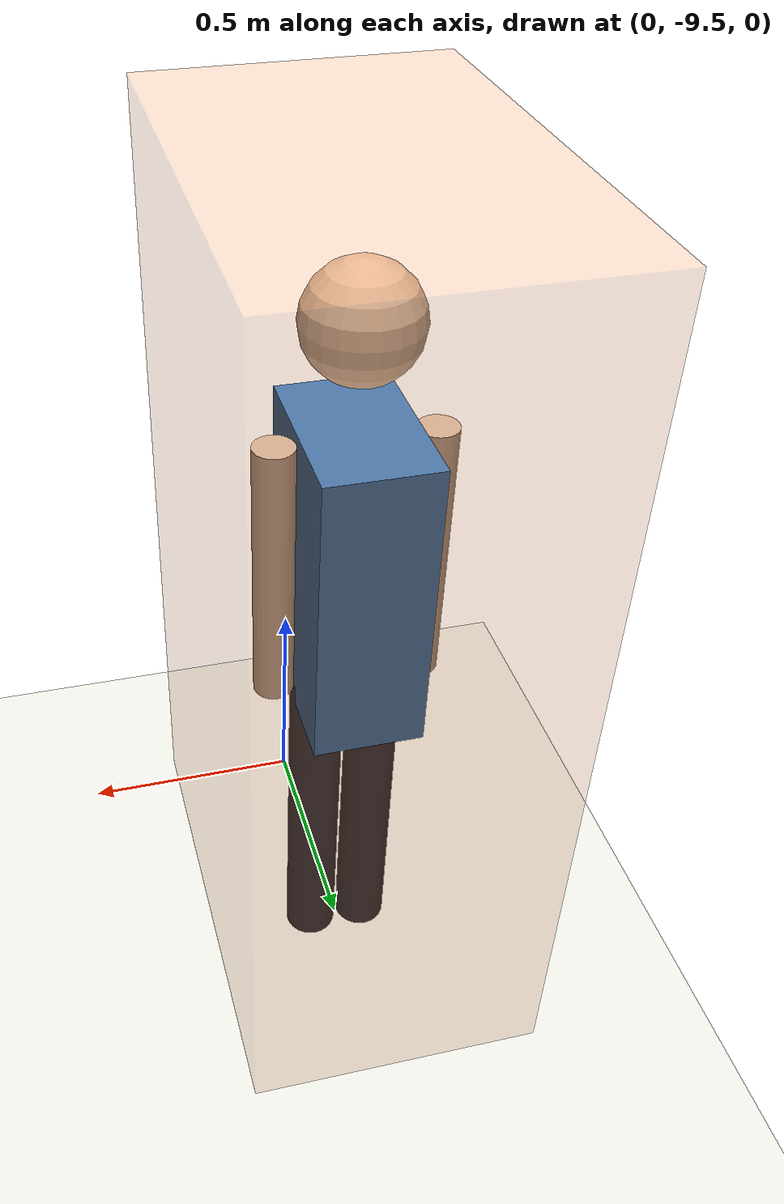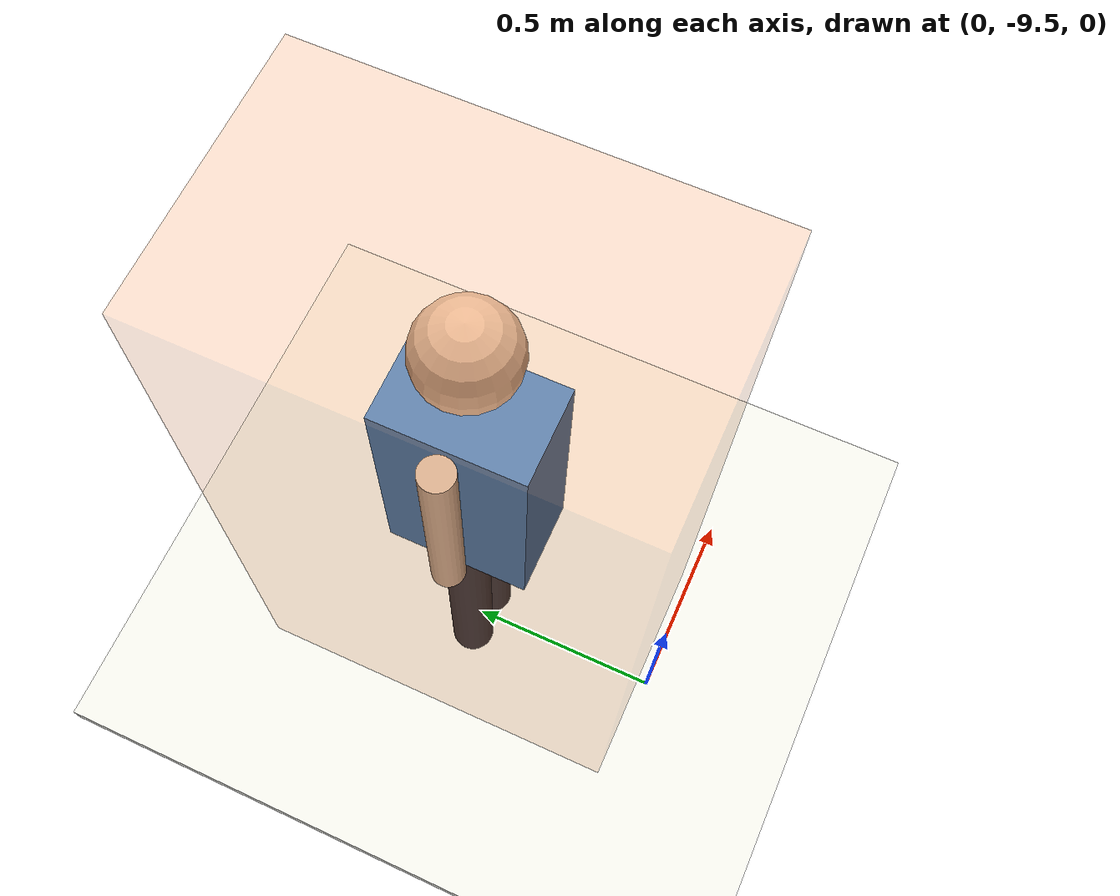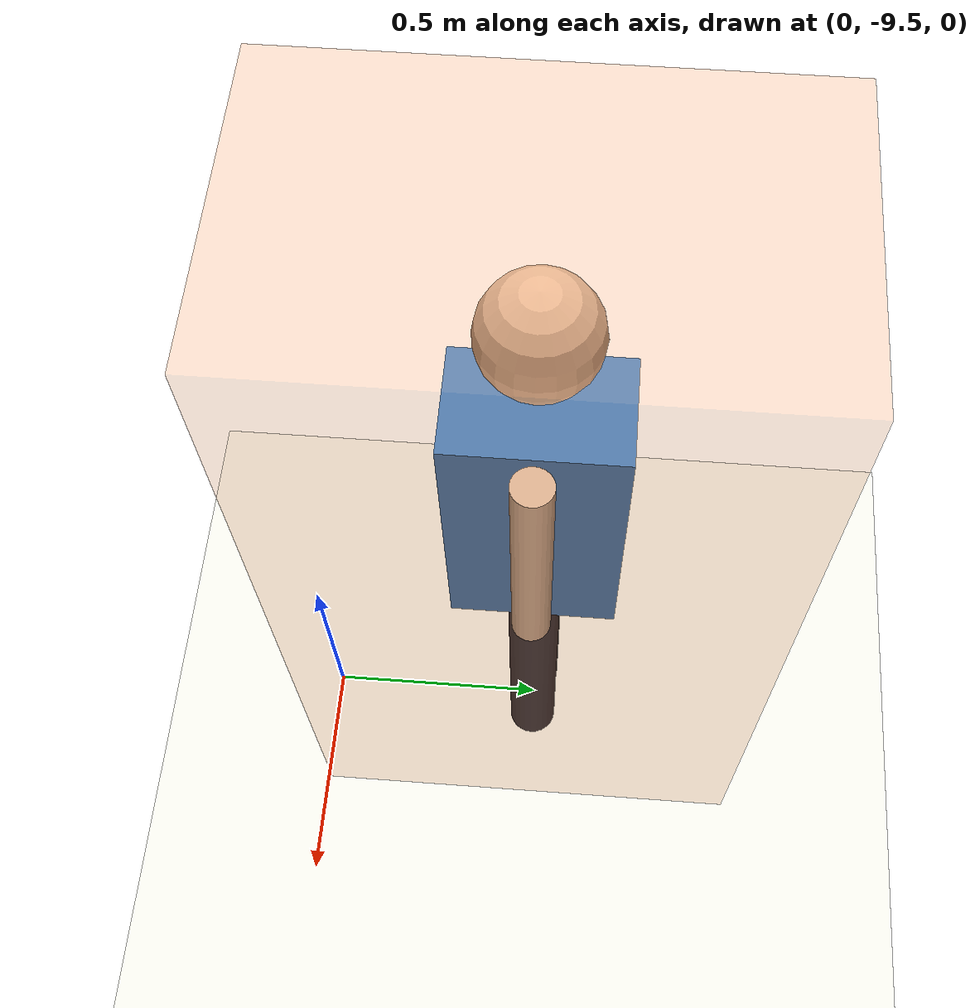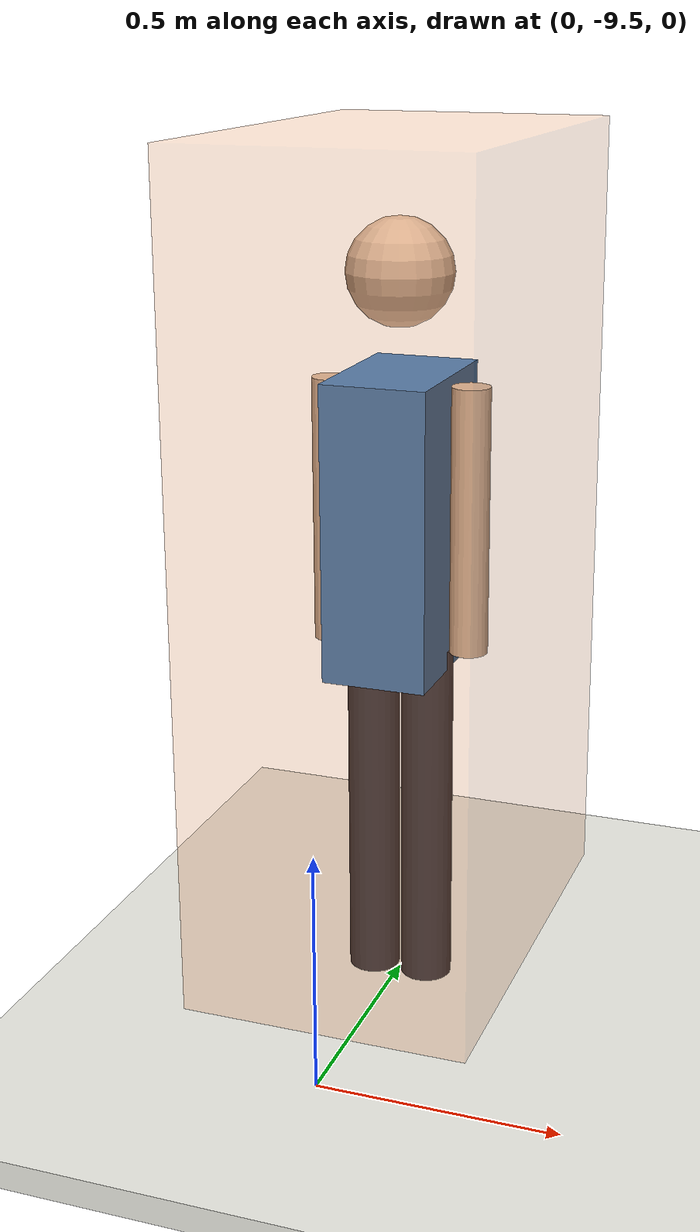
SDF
<?xml version="1.0" ?>
<sdf version="1.7">
  <world name="human_xboxcontrol">
    <gravity>0 0 -9.8</gravity>

    <scene>
      <ambient>0.80 0.80 0.80 1</ambient>
      <background>0.95 0.96 0.97 1</background>
      <shadows>true</shadows>
    </scene>

    <light name="sun" type="directional">
      <cast_shadows>true</cast_shadows>
      <pose>0 0 10 0 0 0</pose>
      <diffuse>0.9 0.9 0.9 1</diffuse>
      <specular>0.2 0.2 0.2 1</specular>
      <attenuation>
        <range>1000</range>
        <constant>0.9</constant>
        <linear>0.01</linear>
        <quadratic>0.001</quadratic>
      </attenuation>
      <direction>-0.25 0.10 -0.95</direction>
    </light>

    <model name="scene_floor">
      <static>true</static>
      <link name="link">
        <collision name="collision">
          <pose>0 0 -0.03 0 0 0</pose>
          <geometry><box><size>20 20 0.06</size></box></geometry>
        </collision>
        <visual name="visual">
          <pose>0 0 -0.03 0 0 0</pose>
          <geometry><box><size>20 20 0.06</size></box></geometry>
          <material>
            <ambient>0.88 0.88 0.86 1</ambient>
            <diffuse>0.93 0.93 0.90 1</diffuse>
          </material>
        </visual>
      </link>
    </model>

    <model name="human_xbox">
      <static>false</static>
      <pose>0.00 -9.00 0.474502 0 0 1.570796</pose>
      <link name="torso_link">
        <gravity>false</gravity>
        <pose>0 0 0.56 0 0 0</pose>
        <inertial>
          <mass>8.0</mass>
          <inertia>
            <ixx>0.25</ixx>
            <iyy>0.20</iyy>
            <izz>0.18</izz>
            <ixy>0</ixy>
            <ixz>0</ixz>
            <iyz>0</iyz>
          </inertia>
        </inertial>
        <visual name="torso_visual">
          <pose>0 0 0 0 0 0</pose>
          <geometry><box><size>0.34 0.22 0.62</size></box></geometry>
          <material><ambient>0.18 0.44 0.74 1</ambient><diffuse>0.24 0.52 0.80 1</diffuse></material>
        </visual>
      </link>
      <link name="head_link">
        <gravity>false</gravity>
        <pose>0 0 1.07 0 0 0</pose>
        <inertial>
          <mass>1.5</mass>
          <inertia>
            <ixx>0.02</ixx>
            <iyy>0.02</iyy>
            <izz>0.02</izz>
            <ixy>0</ixy>
            <ixz>0</ixz>
            <iyz>0</iyz>
          </inertia>
        </inertial>
        <visual name="head_visual">
          <pose>0 0 0 0 0 0</pose>
          <geometry><sphere><radius>0.11</radius></sphere></geometry>
          <material><ambient>0.86 0.73 0.63 1</ambient><diffuse>0.90 0.78 0.68 1</diffuse></material>
        </visual>
      </link>
      <link name="left_leg_link">
        <gravity>false</gravity>
        <pose>0.00 0.06 0.29 0 0 0</pose>
        <inertial>
          <mass>2.0</mass>
          <inertia>
            <ixx>0.10</ixx>
            <iyy>0.03</iyy>
            <izz>0.10</izz>
            <ixy>0</ixy>
            <ixz>0</ixz>
            <iyz>0</iyz>
          </inertia>
        </inertial>
        <visual name="left_leg_visual">
          <pose>0 0 -0.38 0 0 0</pose>
          <geometry><cylinder><radius>0.055</radius><length>0.76</length></cylinder></geometry>
          <material><ambient>0.14 0.16 0.20 1</ambient><diffuse>0.18 0.20 0.26 1</diffuse></material>
        </visual>
      </link>
      <link name="right_leg_link">
        <gravity>false</gravity>
        <pose>0.00 -0.06 0.29 0 0 0</pose>
        <inertial>
          <mass>2.0</mass>
          <inertia>
            <ixx>0.10</ixx>
            <iyy>0.03</iyy>
            <izz>0.10</izz>
            <ixy>0</ixy>
            <ixz>0</ixz>
            <iyz>0</iyz>
          </inertia>
        </inertial>
        <visual name="right_leg_visual">
          <pose>0 0 -0.38 0 0 0</pose>
          <geometry><cylinder><radius>0.055</radius><length>0.76</length></cylinder></geometry>
          <material><ambient>0.14 0.16 0.20 1</ambient><diffuse>0.18 0.20 0.26 1</diffuse></material>
        </visual>
      </link>
      <link name="left_arm_link">
        <gravity>false</gravity>
        <pose>0.00 0.15 0.85 0 0 0</pose>
        <inertial>
          <mass>1.2</mass>
          <inertia>
            <ixx>0.04</ixx>
            <iyy>0.015</iyy>
            <izz>0.04</izz>
            <ixy>0</ixy>
            <ixz>0</ixz>
            <iyz>0</iyz>
          </inertia>
        </inertial>
        <visual name="left_arm_visual">
          <pose>0 0 -0.28 0 0 0</pose>
          <geometry><cylinder><radius>0.04</radius><length>0.56</length></cylinder></geometry>
          <material><ambient>0.86 0.73 0.63 1</ambient><diffuse>0.90 0.78 0.68 1</diffuse></material>
        </visual>
      </link>
      <link name="right_arm_link">
        <gravity>false</gravity>
        <pose>0.00 -0.15 0.85 0 0 0</pose>
        <inertial>
          <mass>1.2</mass>
          <inertia>
            <ixx>0.04</ixx>
            <iyy>0.015</iyy>
            <izz>0.04</izz>
            <ixy>0</ixy>
            <ixz>0</ixz>
            <iyz>0</iyz>
          </inertia>
        </inertial>
        <visual name="right_arm_visual">
          <pose>0 0 -0.28 0 0 0</pose>
          <geometry><cylinder><radius>0.04</radius><length>0.56</length></cylinder></geometry>
          <material><ambient>0.86 0.73 0.63 1</ambient><diffuse>0.90 0.78 0.68 1</diffuse></material>
        </visual>
      </link>
      <joint name="head_joint" type="fixed">
        <parent>torso_link</parent>
        <child>head_link</child>
      </joint>
      <joint name="left_leg_joint" type="revolute">
        <parent>torso_link</parent>
        <child>left_leg_link</child>
        <axis>
          <xyz>0 1 0</xyz>
          <limit>
            <lower>-0.50</lower>
            <upper>0.50</upper>
          </limit>
          <dynamics>
            <damping>1.0</damping>
          </dynamics>
        </axis>
      </joint>
      <joint name="right_leg_joint" type="revolute">
        <parent>torso_link</parent>
        <child>right_leg_link</child>
        <axis>
          <xyz>0 1 0</xyz>
          <limit>
            <lower>-0.50</lower>
            <upper>0.50</upper>
          </limit>
          <dynamics>
            <damping>1.0</damping>
          </dynamics>
        </axis>
      </joint>
      <joint name="left_arm_joint" type="revolute">
        <parent>torso_link</parent>
        <child>left_arm_link</child>
        <axis>
          <xyz>0 1 0</xyz>
          <limit>
            <lower>-0.90</lower>
            <upper>0.90</upper>
          </limit>
          <dynamics>
            <damping>0.8</damping>
          </dynamics>
        </axis>
      </joint>
      <joint name="right_arm_joint" type="revolute">
        <parent>torso_link</parent>
        <child>right_arm_link</child>
        <axis>
          <xyz>0 1 0</xyz>
          <limit>
            <lower>-0.90</lower>
            <upper>0.90</upper>
          </limit>
          <dynamics>
            <damping>0.8</damping>
          </dynamics>
        </axis>
      </joint>
      <plugin
        filename="gz-sim-joint-position-controller-system"
        name="gz::sim::systems::JointPositionController">
        <joint_name>left_arm_joint</joint_name>
        <topic>/model/human_xbox/left_arm_joint_cmd</topic>
        <p_gain>12</p_gain>
        <d_gain>0.8</d_gain>
        <cmd_max>20</cmd_max>
        <cmd_min>-20</cmd_min>
      </plugin>
      <plugin
        filename="gz-sim-joint-position-controller-system"
        name="gz::sim::systems::JointPositionController">
        <joint_name>right_arm_joint</joint_name>
        <topic>/model/human_xbox/right_arm_joint_cmd</topic>
        <p_gain>12</p_gain>
        <d_gain>0.8</d_gain>
        <cmd_max>20</cmd_max>
        <cmd_min>-20</cmd_min>
      </plugin>
      <plugin
        filename="gz-sim-joint-position-controller-system"
        name="gz::sim::systems::JointPositionController">
        <joint_name>left_leg_joint</joint_name>
        <topic>/model/human_xbox/left_leg_joint_cmd</topic>
        <p_gain>14</p_gain>
        <d_gain>1.0</d_gain>
        <cmd_max>20</cmd_max>
        <cmd_min>-20</cmd_min>
      </plugin>
      <plugin
        filename="gz-sim-joint-position-controller-system"
        name="gz::sim::systems::JointPositionController">
        <joint_name>right_leg_joint</joint_name>
        <topic>/model/human_xbox/right_leg_joint_cmd</topic>
        <p_gain>14</p_gain>
        <d_gain>1.0</d_gain>
        <cmd_max>20</cmd_max>
        <cmd_min>-20</cmd_min>
      </plugin>
    </model>

    <model name="human_xbox_collision_proxy">
      <static>false</static>
      <pose>0.00 -9.00 0.960000 0 0 1.570796</pose>
      <link name="collision_link">
        <gravity>false</gravity>
        <collision name="collision">
          <geometry><box><size>0.95 0.60 1.72</size></box></geometry>
        </collision>
        <visual name="debug_visual">
          <geometry><box><size>0.95 0.60 1.72</size></box></geometry>
          <material><ambient>0.95 0.45 0.12 0.18</ambient><diffuse>0.95 0.45 0.12 0.18</diffuse></material>
        </visual>
      </link>
    </model>
  </world>
</sdf>
